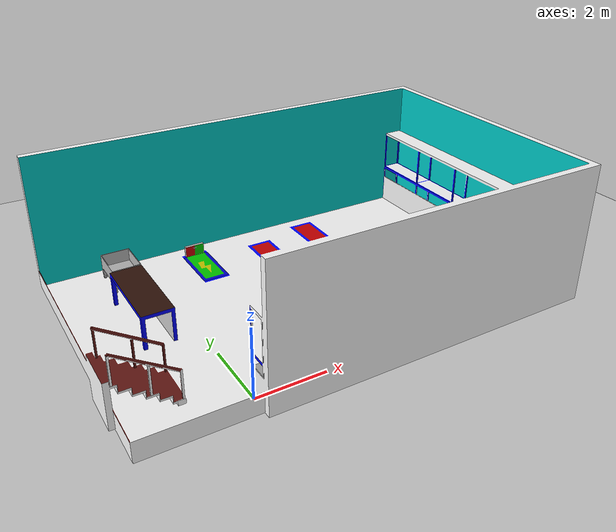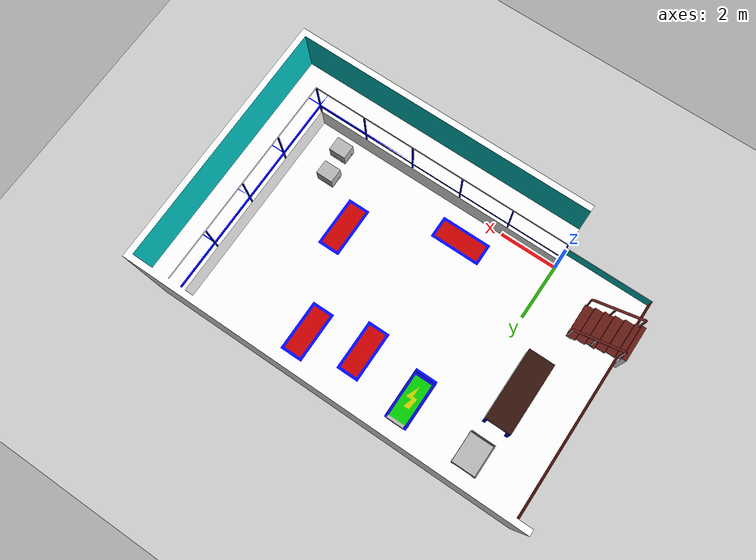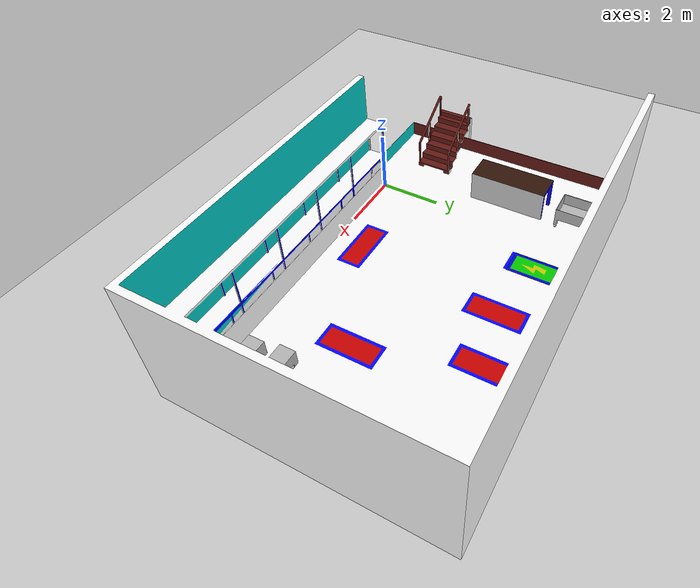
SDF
<sdf version="1.6">
 <world name="default">
  <light name="sun" type="directional">
   <pose>0 0 10 0 -0 0</pose>
   <diffuse>0.8 0.8 0.8 1</diffuse>
   <specular>0.2 0.2 0.2 1</specular>
   <attenuation>
    <range>1000</range>
    <constant>0.9</constant>
    <linear>0.01</linear>
    <quadratic>0.001</quadratic>
   </attenuation>
   <direction>-0.5 0.1 -0.9</direction>
  </light>
  <model name="ground_plane">
   <static>1</static>
   <link name="link">
    <collision name="collision">
     <geometry><plane><normal>0 0 1</normal><size>100 100</size></plane></geometry>
     <surface><friction><ode><mu>100</mu><mu2>50</mu2></ode></friction></surface>
    </collision>
    <visual name="visual">
     <cast_shadows>0</cast_shadows>
     <geometry><plane><normal>0 0 1</normal><size>100 100</size></plane></geometry>
     <material>
      <script><uri>file://media/materials/scripts/gazebo.material</uri><name>Gazebo/Grey</name></script>
     </material>
    </visual>
   </link>
  </model>
  <gravity>0 0 -9.8</gravity>
  <magnetic_field>6e-06 2.3e-05 -4.2e-05</magnetic_field>
  <atmosphere type="adiabatic"/>
  <physics name="default_physics" default="0" type="ode">
   <max_step_size>0.001</max_step_size>
   <real_time_factor>1</real_time_factor>
   <real_time_update_rate>1000</real_time_update_rate>
  </physics>
  <scene><ambient>0.4 0.4 0.4 1</ambient><background>0.7 0.7 0.7 1</background><shadows>1</shadows></scene>
  <audio><device>default</device></audio>
  <spherical_coordinates>
   <surface_model>EARTH_WGS84</surface_model>
   <latitude_deg>0</latitude_deg>
   <longitude_deg>0</longitude_deg>
   <elevation>0</elevation>
   <heading_deg>0</heading_deg>
  </spherical_coordinates>
  <model name="atolyeguncel">
   <static>1</static>
   <pose>0 0 0.1 0 -0 0</pose>
   <link name="link">
    <collision name="collision">
     <geometry><mesh><uri>model://atolyeguncel/meshes/yeniatolye.dae</uri></mesh></geometry>
    </collision>
    <visual name="visual">
     <geometry><mesh><uri>model://atolyeguncel/meshes/yeniatolye.dae</uri></mesh></geometry>
     <material>
      <script>
       <uri>model://atolyeguncel/materials/scripts</uri>
       <uri>model://atolyeguncel/materials/textures</uri>
       <name>__default__</name>
      </script>
     </material>
    </visual>
   </link>
  </model>
  <model name="QRsarjunitesi">
   <static>1</static>
   <pose>1.08 7.015 0.1001 0 -0 0</pose>
   <link name="link">
    <collision name="surface">
     <geometry><mesh><uri>model://QRsarjunitesi/meshes/sarjistasyonu.dae</uri></mesh></geometry>
    </collision>
    <collision name="base">
     <geometry><mesh><uri>model://QRsarjunitesi/meshes/sarjistasyonu.dae</uri></mesh></geometry>
    </collision>
    <visual name="visual">
     <geometry><mesh><uri>model://QRsarjunitesi/meshes/sarjistasyonu.dae</uri></mesh></geometry>
     <material>
      <script>
       <name>QRsarjunitesi</name>
       <uri>model://QRsarjunitesi/materials/scripts</uri>
       <uri>model://QRsarjunitesi/materials/textures</uri>
      </script>
     </material>
    </visual>
   </link>
  </model>
  <model name="kutu">
   <static>1</static>
   <pose>7.95 0.62 0.215 0 -0 0</pose>
   <link name="link">
    <collision name="collision">
     <geometry><mesh><uri>model://kutu/meshes/kutu3.dae</uri></mesh></geometry>
    </collision>
    <visual name="visual">
     <geometry><mesh><uri>model://kutu/meshes/kutu3.dae</uri></mesh></geometry>
     <material>
      <script>
       <uri>model://kutu/materials/scripts</uri>
       <uri>model://kutu/materials/textures</uri>
       <name>Kutu/Ahsap</name>
      </script>
     </material>
    </visual>
   </link>
  </model>
  <model name="kutu_0">
   <static>1</static>
   <pose>7.82 1.53 0.215 0 -0 0</pose>
   <link name="link">
    <collision name="collision">
     <geometry><mesh><uri>model://kutu/meshes/kutu3.dae</uri></mesh></geometry>
    </collision>
    <visual name="visual">
     <geometry><mesh><uri>model://kutu/meshes/kutu3.dae</uri></mesh></geometry>
     <material>
      <script>
       <uri>model://kutu/materials/scripts</uri>
       <uri>model://kutu/materials/textures</uri>
       <name>Kutu/Ahsap</name>
      </script>
     </material>
    </visual>
   </link>
  </model>
  <model name="masa">
   <static>1</static>
   <pose>-1.28 4.2 0.567 0 -0 0</pose>
   <link name="link">
    <collision name="surface">
     <geometry><mesh><uri>model://masa/meshes/masa1.dae</uri></mesh></geometry>
    </collision>
    <collision name="column">
     <geometry><mesh><uri>model://masa/meshes/masa1.dae</uri></mesh></geometry>
    </collision>
    <collision name="base"><geometry><mesh><uri>model://masa/meshes/masa1.dae</uri></mesh></geometry></collision>
    <visual name="visual"><geometry><mesh><uri>model://masa/meshes/masa1.dae</uri></mesh></geometry></visual>
   </link>
  </model>
  <model name="yuk">
   <static>1</static>
   <pose>-1.4125 5.92568 0.1 0 -0 0</pose>
   <link name="link">
    <collision name="surface"><geometry><mesh><uri>model://yuk/meshes/YUK2.dae</uri></mesh></geometry></collision>
    <collision name="base"><geometry><mesh><uri>model://yuk/meshes/YUK2.dae</uri></mesh></geometry></collision>
    <visual name="visual">
     <geometry><mesh><uri>model://yuk/meshes/YUK2.dae</uri></mesh></geometry>
     <material>
      <script>
       <name>Yuk</name>
       <uri>model://yuk/materials/scripts</uri>
       <uri>model://yuk/materials/textures</uri>
      </script>
     </material>
    </visual>
    <visual name="wheel1_visual">
     <geometry><cylinder><radius>0.05</radius><length>0.02</length></cylinder></geometry>
    </visual>
   </link>
  </model>
 </world>
</sdf>
